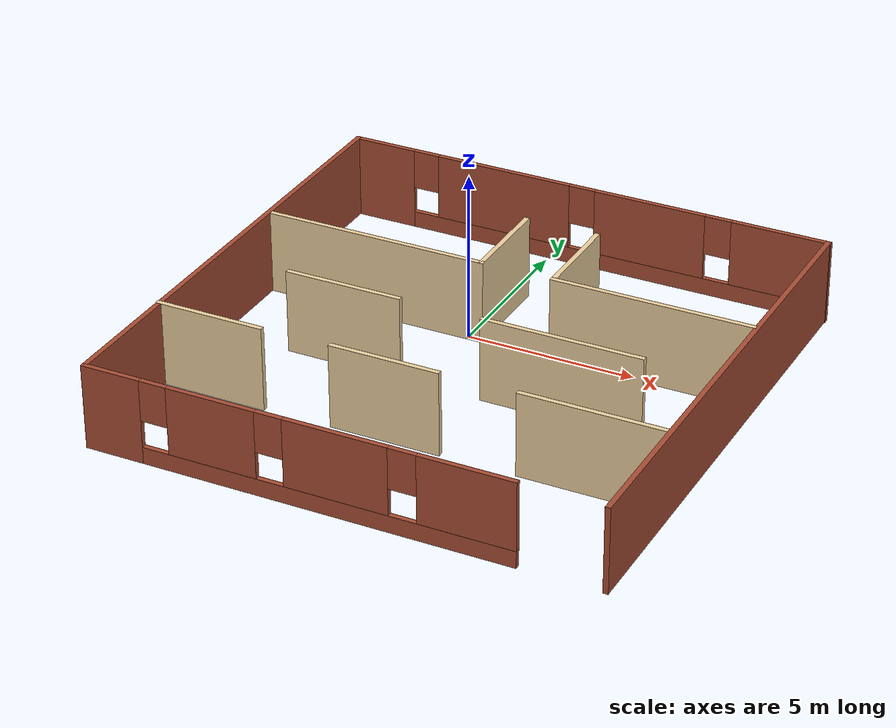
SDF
<?xml version='1.0'?>
<sdf version='1.7'>
  <model name='gMaze10'>
    <pose>1.10397 -2.1707 0 0 -0 0</pose>
    <link name='Wall_0'>
      <pose>0.009097 7.425 0 0 -0 0</pose>
      <visual name='Wall_0_Visual_0'>
        <pose>-6.50945 0 1.25 0 -0 0</pose>
        <geometry>
          <box>
            <size>1.98109 0.15 2.5</size>
          </box>
        </geometry>
        <material>
          <script>
            <uri>file://media/materials/scripts/gazebo.material</uri>
            <name>Gazebo/Bricks</name>
          </script>
          <ambient>1 1 1 1</ambient>
        </material>
        <meta>
          <layer>0</layer>
        </meta>
      </visual>
      <collision name='Wall_0_Collision_0'>
        <geometry>
          <box>
            <size>1.98109 0.15 2.5</size>
          </box>
        </geometry>
        <pose>-6.50945 0 1.25 0 -0 0</pose>
      </collision>
      <visual name='Wall_0_Visual_1'>
        <pose>0.990545 0 0.25 0 -0 0</pose>
        <geometry>
          <box>
            <size>13.0189 0.15 0.5</size>
          </box>
        </geometry>
        <material>
          <script>
            <uri>file://media/materials/scripts/gazebo.material</uri>
            <name>Gazebo/Bricks</name>
          </script>
          <ambient>1 1 1 1</ambient>
        </material>
        <meta>
          <layer>0</layer>
        </meta>
      </visual>
      <collision name='Wall_0_Collision_1'>
        <geometry>
          <box>
            <size>13.0189 0.15 0.5</size>
          </box>
        </geometry>
        <pose>0.990545 0 0.25 0 -0 0</pose>
      </collision>
      <visual name='Wall_0_Visual_2'>
        <pose>-2.60363 0 1.5 0 -0 0</pose>
        <geometry>
          <box>
            <size>4.23056 0.15 2</size>
          </box>
        </geometry>
        <material>
          <script>
            <uri>file://media/materials/scripts/gazebo.material</uri>
            <name>Gazebo/Bricks</name>
          </script>
          <ambient>1 1 1 1</ambient>
        </material>
        <meta>
          <layer>0</layer>
        </meta>
      </visual>
      <collision name='Wall_0_Collision_2'>
        <geometry>
          <box>
            <size>4.23056 0.15 2</size>
          </box>
        </geometry>
        <pose>-2.60363 0 1.5 0 -0 0</pose>
      </collision>
      <visual name='Wall_0_Visual_3'>
        <pose>2.02238 0 1.5 0 -0 0</pose>
        <geometry>
          <box>
            <size>3.42145 0.15 2</size>
          </box>
        </geometry>
        <material>
          <script>
            <uri>file://media/materials/scripts/gazebo.material</uri>
            <name>Gazebo/Bricks</name>
          </script>
          <ambient>1 1 1 1</ambient>
        </material>
        <meta>
          <layer>0</layer>
        </meta>
      </visual>
      <collision name='Wall_0_Collision_3'>
        <geometry>
          <box>
            <size>3.42145 0.15 2</size>
          </box>
        </geometry>
        <pose>2.02238 0 1.5 0 -0 0</pose>
      </collision>
      <visual name='Wall_0_Visual_4'>
        <pose>6.01655 0 1.5 0 -0 0</pose>
        <geometry>
          <box>
            <size>2.9669 0.15 2</size>
          </box>
        </geometry>
        <material>
          <script>
            <uri>file://media/materials/scripts/gazebo.material</uri>
            <name>Gazebo/Bricks</name>
          </script>
          <ambient>1 1 1 1</ambient>
        </material>
        <meta>
          <layer>0</layer>
        </meta>
      </visual>
      <collision name='Wall_0_Collision_4'>
        <geometry>
          <box>
            <size>2.9669 0.15 2</size>
          </box>
        </geometry>
        <pose>6.01655 0 1.5 0 -0 0</pose>
      </collision>
      <visual name='Wall_0_Visual_5'>
        <pose>-5.11891 0 1.9 0 -0 0</pose>
        <geometry>
          <box>
            <size>0.8 0.15 1.2</size>
          </box>
        </geometry>
        <material>
          <script>
            <uri>file://media/materials/scripts/gazebo.material</uri>
            <name>Gazebo/Bricks</name>
          </script>
          <ambient>1 1 1 1</ambient>
        </material>
        <meta>
          <layer>0</layer>
        </meta>
      </visual>
      <collision name='Wall_0_Collision_5'>
        <geometry>
          <box>
            <size>0.8 0.15 1.2</size>
          </box>
        </geometry>
        <pose>-5.11891 0 1.9 0 -0 0</pose>
      </collision>
      <visual name='Wall_0_Visual_6'>
        <pose>-0.088347 0 1.9 0 -0 0</pose>
        <geometry>
          <box>
            <size>0.8 0.15 1.2</size>
          </box>
        </geometry>
        <material>
          <script>
            <uri>file://media/materials/scripts/gazebo.material</uri>
            <name>Gazebo/Bricks</name>
          </script>
          <ambient>1 1 1 1</ambient>
        </material>
        <meta>
          <layer>0</layer>
        </meta>
      </visual>
      <collision name='Wall_0_Collision_6'>
        <geometry>
          <box>
            <size>0.8 0.15 1.2</size>
          </box>
        </geometry>
        <pose>-0.088347 0 1.9 0 -0 0</pose>
      </collision>
      <visual name='Wall_0_Visual_7'>
        <pose>4.1331 0 1.9 0 -0 0</pose>
        <geometry>
          <box>
            <size>0.8 0.15 1.2</size>
          </box>
        </geometry>
        <material>
          <script>
            <uri>file://media/materials/scripts/gazebo.material</uri>
            <name>Gazebo/Bricks</name>
          </script>
          <ambient>1 1 1 1</ambient>
        </material>
        <meta>
          <layer>0</layer>
        </meta>
      </visual>
      <collision name='Wall_0_Collision_7'>
        <geometry>
          <box>
            <size>0.8 0.15 1.2</size>
          </box>
        </geometry>
        <pose>4.1331 0 1.9 0 -0 0</pose>
      </collision>
    </link>
    <link name='Wall_1'>
      <collision name='Wall_1_Collision'>
        <geometry>
          <box>
            <size>15 0.15 2.5</size>
          </box>
        </geometry>
        <pose>0 0 1.25 0 -0 0</pose>
      </collision>
      <visual name='Wall_1_Visual'>
        <pose>0 0 1.25 0 -0 0</pose>
        <geometry>
          <box>
            <size>15 0.15 2.5</size>
          </box>
        </geometry>
        <material>
          <script>
            <uri>file://media/materials/scripts/gazebo.material</uri>
            <name>Gazebo/Bricks</name>
          </script>
          <ambient>1 1 1 1</ambient>
        </material>
        <meta>
          <layer>0</layer>
        </meta>
      </visual>
      <pose>7.41398 -0 0 0 -0 -1.5708</pose>
    </link>
    <link name='Wall_100'>
      <collision name='Wall_100_Collision'>
        <geometry>
          <box>
            <size>3 0.15 2.5</size>
          </box>
        </geometry>
        <pose>0 0 1.25 0 -0 0</pose>
      </collision>
      <visual name='Wall_100_Visual'>
        <pose>0 0 1.25 0 -0 0</pose>
        <geometry>
          <box>
            <size>3 0.15 2.5</size>
          </box>
        </geometry>
        <material>
          <script>
            <uri>file://media/materials/scripts/gazebo.material</uri>
            <name>Gazebo/Grey</name>
          </script>
          <ambient>0.921569 0.807843 0.615686 1</ambient>
        </material>
        <meta>
          <layer>0</layer>
        </meta>
      </visual>
      <pose>1.46766 3.55563 0 0 -0 -1.5708</pose>
    </link>
    <link name='Wall_101'>
      <collision name='Wall_101_Collision'>
        <geometry>
          <box>
            <size>6 0.15 2.5</size>
          </box>
        </geometry>
        <pose>0 0 1.25 0 -0 0</pose>
      </collision>
      <visual name='Wall_101_Visual'>
        <pose>0 0 1.25 0 -0 0</pose>
        <geometry>
          <box>
            <size>6 0.15 2.5</size>
          </box>
        </geometry>
        <material>
          <script>
            <uri>file://media/materials/scripts/gazebo.material</uri>
            <name>Gazebo/Grey</name>
          </script>
          <ambient>0.921569 0.807843 0.615686 1</ambient>
        </material>
        <meta>
          <layer>0</layer>
        </meta>
      </visual>
      <pose>4.39266 2.13063 0 0 -0 0</pose>
    </link>
    <link name='Wall_3'>
      <collision name='Wall_3_Collision'>
        <geometry>
          <box>
            <size>15 0.15 2.5</size>
          </box>
        </geometry>
        <pose>0 0 1.25 0 -0 0</pose>
      </collision>
      <visual name='Wall_3_Visual'>
        <pose>0 0 1.25 0 -0 0</pose>
        <geometry>
          <box>
            <size>15 0.15 2.5</size>
          </box>
        </geometry>
        <material>
          <script>
            <uri>file://media/materials/scripts/gazebo.material</uri>
            <name>Gazebo/Bricks</name>
          </script>
          <ambient>1 1 1 1</ambient>
        </material>
        <meta>
          <layer>0</layer>
        </meta>
      </visual>
      <pose>-7.4159 -0 0 0 -0 -1.5708</pose>
    </link>
    <link name='Wall_4'>
      <pose>-1.2409 -7.425 0 0 -0 0</pose>
      <visual name='Wall_4_Visual_0'>
        <pose>-5.37558 0 1.25 0 -0 0</pose>
        <geometry>
          <box>
            <size>1.74884 0.15 2.5</size>
          </box>
        </geometry>
        <material>
          <script>
            <uri>file://media/materials/scripts/gazebo.material</uri>
            <name>Gazebo/Bricks</name>
          </script>
          <ambient>1 1 1 1</ambient>
        </material>
        <meta>
          <layer>0</layer>
        </meta>
      </visual>
      <collision name='Wall_4_Collision_0'>
        <geometry>
          <box>
            <size>1.74884 0.15 2.5</size>
          </box>
        </geometry>
        <pose>-5.37558 0 1.25 0 -0 0</pose>
      </collision>
      <visual name='Wall_4_Visual_1'>
        <pose>0.87442 0 0.25 0 -0 0</pose>
        <geometry>
          <box>
            <size>10.7512 0.15 0.5</size>
          </box>
        </geometry>
        <material>
          <script>
            <uri>file://media/materials/scripts/gazebo.material</uri>
            <name>Gazebo/Bricks</name>
          </script>
          <ambient>1 1 1 1</ambient>
        </material>
        <meta>
          <layer>0</layer>
        </meta>
      </visual>
      <collision name='Wall_4_Collision_1'>
        <geometry>
          <box>
            <size>10.7512 0.15 0.5</size>
          </box>
        </geometry>
        <pose>0.87442 0 0.25 0 -0 0</pose>
      </collision>
      <visual name='Wall_4_Visual_2'>
        <pose>-2.40199 0 1.5 0 -0 0</pose>
        <geometry>
          <box>
            <size>2.59834 0.15 2</size>
          </box>
        </geometry>
        <material>
          <script>
            <uri>file://media/materials/scripts/gazebo.material</uri>
            <name>Gazebo/Bricks</name>
          </script>
          <ambient>1 1 1 1</ambient>
        </material>
        <meta>
          <layer>0</layer>
        </meta>
      </visual>
      <collision name='Wall_4_Collision_2'>
        <geometry>
          <box>
            <size>2.59834 0.15 2</size>
          </box>
        </geometry>
        <pose>-2.40199 0 1.5 0 -0 0</pose>
      </collision>
      <visual name='Wall_4_Visual_3'>
        <pose>1.19683 0 1.5 0 -0 0</pose>
        <geometry>
          <box>
            <size>2.99931 0.15 2</size>
          </box>
        </geometry>
        <material>
          <script>
            <uri>file://media/materials/scripts/gazebo.material</uri>
            <name>Gazebo/Bricks</name>
          </script>
          <ambient>1 1 1 1</ambient>
        </material>
        <meta>
          <layer>0</layer>
        </meta>
      </visual>
      <collision name='Wall_4_Collision_3'>
        <geometry>
          <box>
            <size>2.99931 0.15 2</size>
          </box>
        </geometry>
        <pose>1.19683 0 1.5 0 -0 0</pose>
      </collision>
      <visual name='Wall_4_Visual_4'>
        <pose>4.87324 0 1.5 0 -0 0</pose>
        <geometry>
          <box>
            <size>2.75352 0.15 2</size>
          </box>
        </geometry>
        <material>
          <script>
            <uri>file://media/materials/scripts/gazebo.material</uri>
            <name>Gazebo/Bricks</name>
          </script>
          <ambient>1 1 1 1</ambient>
        </material>
        <meta>
          <layer>0</layer>
        </meta>
      </visual>
      <collision name='Wall_4_Collision_4'>
        <geometry>
          <box>
            <size>2.75352 0.15 2</size>
          </box>
        </geometry>
        <pose>4.87324 0 1.5 0 -0 0</pose>
      </collision>
      <visual name='Wall_4_Visual_5'>
        <pose>-4.10116 0 1.9 0 -0 0</pose>
        <geometry>
          <box>
            <size>0.8 0.15 1.2</size>
          </box>
        </geometry>
        <material>
          <script>
            <uri>file://media/materials/scripts/gazebo.material</uri>
            <name>Gazebo/Bricks</name>
          </script>
          <ambient>1 1 1 1</ambient>
        </material>
        <meta>
          <layer>0</layer>
        </meta>
      </visual>
      <collision name='Wall_4_Collision_5'>
        <geometry>
          <box>
            <size>0.8 0.15 1.2</size>
          </box>
        </geometry>
        <pose>-4.10116 0 1.9 0 -0 0</pose>
      </collision>
      <visual name='Wall_4_Visual_6'>
        <pose>-0.702821 0 1.9 0 -0 0</pose>
        <geometry>
          <box>
            <size>0.8 0.15 1.2</size>
          </box>
        </geometry>
        <material>
          <script>
            <uri>file://media/materials/scripts/gazebo.material</uri>
            <name>Gazebo/Bricks</name>
          </script>
          <ambient>1 1 1 1</ambient>
        </material>
        <meta>
          <layer>0</layer>
        </meta>
      </visual>
      <collision name='Wall_4_Collision_6'>
        <geometry>
          <box>
            <size>0.8 0.15 1.2</size>
          </box>
        </geometry>
        <pose>-0.702821 0 1.9 0 -0 0</pose>
      </collision>
      <visual name='Wall_4_Visual_7'>
        <pose>3.09648 0 1.9 0 -0 0</pose>
        <geometry>
          <box>
            <size>0.8 0.15 1.2</size>
          </box>
        </geometry>
        <material>
          <script>
            <uri>file://media/materials/scripts/gazebo.material</uri>
            <name>Gazebo/Bricks</name>
          </script>
          <ambient>1 1 1 1</ambient>
        </material>
        <meta>
          <layer>0</layer>
        </meta>
      </visual>
      <collision name='Wall_4_Collision_7'>
        <geometry>
          <box>
            <size>0.8 0.15 1.2</size>
          </box>
        </geometry>
        <pose>3.09648 0 1.9 0 -0 0</pose>
      </collision>
    </link>
    <link name='Wall_84'>
      <collision name='Wall_84_Collision'>
        <geometry>
          <box>
            <size>3.25 0.15 2.5</size>
          </box>
        </geometry>
        <pose>0 0 1.25 0 -0 0</pose>
      </collision>
      <visual name='Wall_84_Visual'>
        <pose>0 0 1.25 0 -0 0</pose>
        <geometry>
          <box>
            <size>3.25 0.15 2.5</size>
          </box>
        </geometry>
        <material>
          <script>
            <uri>file://media/materials/scripts/gazebo.material</uri>
            <name>Gazebo/Grey</name>
          </script>
          <ambient>0.921569 0.807843 0.615686 1</ambient>
        </material>
        <meta>
          <layer>0</layer>
        </meta>
      </visual>
      <pose>-5.8841 -3.73759 0 0 -0 0</pose>
    </link>
    <link name='Wall_86'>
      <collision name='Wall_86_Collision'>
        <geometry>
          <box>
            <size>3.25 0.15 2.5</size>
          </box>
        </geometry>
        <pose>0 0 1.25 0 -0 0</pose>
      </collision>
      <visual name='Wall_86_Visual'>
        <pose>0 0 1.25 0 -0 0</pose>
        <geometry>
          <box>
            <size>3.25 0.15 2.5</size>
          </box>
        </geometry>
        <material>
          <script>
            <uri>file://media/materials/scripts/gazebo.material</uri>
            <name>Gazebo/Grey</name>
          </script>
          <ambient>0.921569 0.807843 0.615686 1</ambient>
        </material>
        <meta>
          <layer>0</layer>
        </meta>
      </visual>
      <pose>-0.653168 -3.67641 0 0 -0 0</pose>
    </link>
    <link name='Wall_88'>
      <collision name='Wall_88_Collision'>
        <geometry>
          <box>
            <size>4.25 0.15 2.5</size>
          </box>
        </geometry>
        <pose>0 0 1.25 0 -0 0</pose>
      </collision>
      <visual name='Wall_88_Visual'>
        <pose>0 0 1.25 0 -0 0</pose>
        <geometry>
          <box>
            <size>4.25 0.15 2.5</size>
          </box>
        </geometry>
        <material>
          <script>
            <uri>file://media/materials/scripts/gazebo.material</uri>
            <name>Gazebo/Grey</name>
          </script>
          <ambient>0.921569 0.807843 0.615686 1</ambient>
        </material>
        <meta>
          <layer>0</layer>
        </meta>
      </visual>
      <pose>5.29189 -3.64582 0 0 -0 0</pose>
    </link>
    <link name='Wall_90'>
      <collision name='Wall_90_Collision'>
        <geometry>
          <box>
            <size>3.5 0.15 2.5</size>
          </box>
        </geometry>
        <pose>0 0 1.25 0 -0 0</pose>
      </collision>
      <visual name='Wall_90_Visual'>
        <pose>0 0 1.25 0 -0 0</pose>
        <geometry>
          <box>
            <size>3.5 0.15 2.5</size>
          </box>
        </geometry>
        <material>
          <script>
            <uri>file://media/materials/scripts/gazebo.material</uri>
            <name>Gazebo/Grey</name>
          </script>
          <ambient>0.921569 0.807843 0.615686 1</ambient>
        </material>
        <meta>
          <layer>0</layer>
        </meta>
      </visual>
      <pose>-3.49542 -0.678565 0 0 -0 0</pose>
    </link>
    <link name='Wall_92'>
      <collision name='Wall_92_Collision'>
        <geometry>
          <box>
            <size>4.75 0.15 2.5</size>
          </box>
        </geometry>
        <pose>0 0 1.25 0 -0 0</pose>
      </collision>
      <visual name='Wall_92_Visual'>
        <pose>0 0 1.25 0 -0 0</pose>
        <geometry>
          <box>
            <size>4.75 0.15 2.5</size>
          </box>
        </geometry>
        <material>
          <script>
            <uri>file://media/materials/scripts/gazebo.material</uri>
            <name>Gazebo/Grey</name>
          </script>
          <ambient>0.921569 0.807843 0.615686 1</ambient>
        </material>
        <meta>
          <layer>0</layer>
        </meta>
      </visual>
      <pose>3.03349 -0.678565 0 0 -0 0</pose>
    </link>
    <link name='Wall_96'>
      <collision name='Wall_96_Collision'>
        <geometry>
          <box>
            <size>6.75 0.15 2.5</size>
          </box>
        </geometry>
        <pose>0 0 1.25 0 -0 0</pose>
      </collision>
      <visual name='Wall_96_Visual'>
        <pose>0 0 1.25 0 -0 0</pose>
        <geometry>
          <box>
            <size>6.75 0.15 2.5</size>
          </box>
        </geometry>
        <material>
          <script>
            <uri>file://media/materials/scripts/gazebo.material</uri>
            <name>Gazebo/Grey</name>
          </script>
          <ambient>0.921569 0.807843 0.615686 1</ambient>
        </material>
        <meta>
          <layer>0</layer>
        </meta>
      </visual>
      <pose>-4.00425 2.10844 0 0 -0 3.14159</pose>
    </link>
    <link name='Wall_98'>
      <collision name='Wall_98_Collision'>
        <geometry>
          <box>
            <size>3 0.15 2.5</size>
          </box>
        </geometry>
        <pose>0 0 1.25 0 -0 0</pose>
      </collision>
      <visual name='Wall_98_Visual'>
        <pose>0 0 1.25 0 -0 0</pose>
        <geometry>
          <box>
            <size>3 0.15 2.5</size>
          </box>
        </geometry>
        <material>
          <script>
            <uri>file://media/materials/scripts/gazebo.material</uri>
            <name>Gazebo/Grey</name>
          </script>
          <ambient>0.921569 0.807843 0.615686 1</ambient>
        </material>
        <meta>
          <layer>0</layer>
        </meta>
      </visual>
      <pose>-0.704247 3.53344 0 0 -0 1.5708</pose>
    </link>
    <static>1</static>
  </model>
</sdf>
